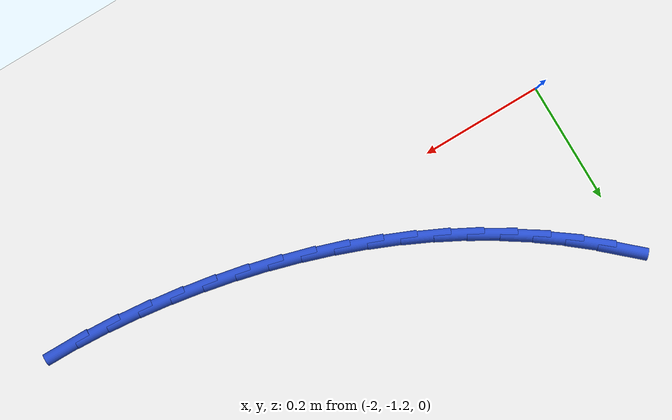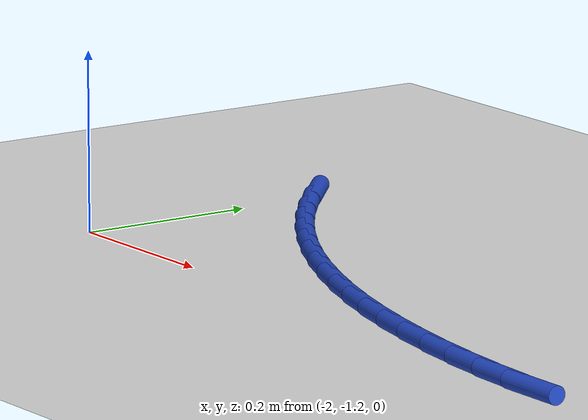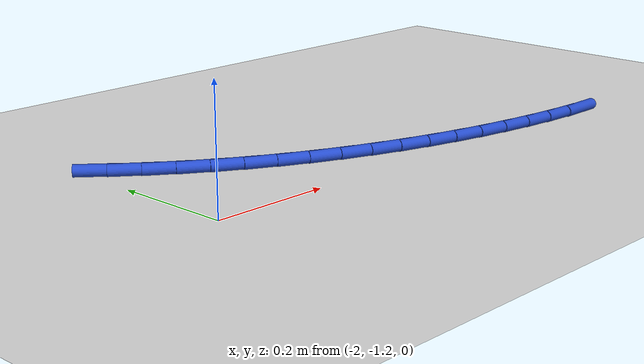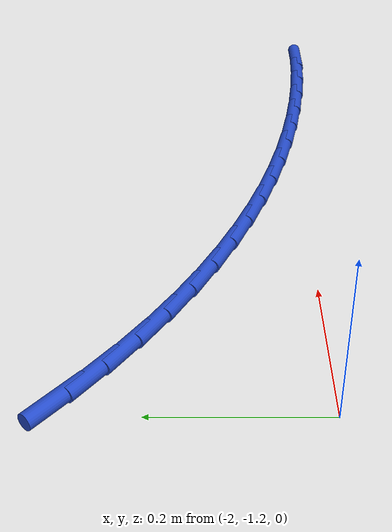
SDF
<sdf version="1.6">
 <world name="default">
  <model name="ground_plane">
   <static>1</static>
   <link name="link">
    <collision name="collision">
     <geometry><plane><normal>0 0 1</normal><size>100 100</size></plane></geometry>
     <surface><friction><ode><mu>100</mu><mu2>50</mu2></ode></friction></surface>
    </collision>
    <visual name="visual">
     <cast_shadows>0</cast_shadows>
     <geometry><plane><normal>0 0 1</normal><size>100 100</size></plane></geometry>
     <material>
      <script><uri>file://media/materials/scripts/gazebo.material</uri><name>Gazebo/WhiteGlow</name></script>
     </material>
    </visual>
   </link>
  </model>
  <model name="line">
   <link name="link_88">
    <pose>-1.986245755000648 -0.91223130965141 0.01 0 1.57 -0.7346722261584941</pose>
    <collision name="collision">
     <geometry><cylinder><radius>0.01</radius><length>0.08</length></cylinder></geometry>
    </collision>
    <visual name="visual">
     <material>
      <script><name>Gazebo/Blue</name><uri>file://media/materials/scripts/gazebo.material</uri></script>
     </material>
     <geometry><cylinder><radius>0.01</radius><length>0.08</length></cylinder></geometry>
    </visual>
   </link>
   <link name="link_89">
    <pose>-1.9478704218937657 -0.9468983202177496 0.01 0 1.57 -0.6820828998065551</pose>
    <collision name="collision">
     <geometry><cylinder><radius>0.01</radius><length>0.08</length></cylinder></geometry>
    </collision>
    <visual name="visual">
     <material>
      <script><name>Gazebo/Blue</name><uri>file://media/materials/scripts/gazebo.material</uri></script>
     </material>
     <geometry><cylinder><radius>0.01</radius><length>0.08</length></cylinder></geometry>
    </visual>
   </link>
   <link name="link_90">
    <pose>-1.90772173788481 -0.9795035550988094 0.01 0 1.57 -0.6306733466079936</pose>
    <collision name="collision">
     <geometry><cylinder><radius>0.01</radius><length>0.08</length></cylinder></geometry>
    </collision>
    <visual name="visual">
     <material>
      <script><name>Gazebo/Blue</name><uri>file://media/materials/scripts/gazebo.material</uri></script>
     </material>
     <geometry><cylinder><radius>0.01</radius><length>0.08</length></cylinder></geometry>
    </visual>
   </link>
   <link name="link_91">
    <pose>-1.8658793328129968 -1.0100546423540748 0.01 0 1.57 -0.5808918701263681</pose>
    <collision name="collision">
     <geometry><cylinder><radius>0.01</radius><length>0.08</length></cylinder></geometry>
    </collision>
    <visual name="visual">
     <material>
      <script><name>Gazebo/Blue</name><uri>file://media/materials/scripts/gazebo.material</uri></script>
     </material>
     <geometry><cylinder><radius>0.01</radius><length>0.08</length></cylinder></geometry>
    </visual>
   </link>
   <link name="link_92">
    <pose>-1.8224444654821819 -1.0385671958832785 0.01 0 1.57 -0.5327575339583152</pose>
    <collision name="collision">
     <geometry><cylinder><radius>0.01</radius><length>0.08</length></cylinder></geometry>
    </collision>
    <visual name="visual">
     <material>
      <script><name>Gazebo/Blue</name><uri>file://media/materials/scripts/gazebo.material</uri></script>
     </material>
     <geometry><cylinder><radius>0.01</radius><length>0.08</length></cylinder></geometry>
    </visual>
   </link>
   <link name="link_93">
    <pose>-1.7775183946962179 -1.065056829586155 0.01 0 1.57 -0.4862595987860679</pose>
    <collision name="collision">
     <geometry><cylinder><radius>0.01</radius><length>0.08</length></cylinder></geometry>
    </collision>
    <visual name="visual">
     <material>
      <script><name>Gazebo/Blue</name><uri>file://media/materials/scripts/gazebo.material</uri></script>
     </material>
     <geometry><cylinder><radius>0.01</radius><length>0.08</length></cylinder></geometry>
    </visual>
   </link>
   <link name="link_94">
    <pose>-1.7312023792589593 -1.0895391573624391 0.01 0 1.57 -0.4413621831955111</pose>
    <collision name="collision">
     <geometry><cylinder><radius>0.01</radius><length>0.08</length></cylinder></geometry>
    </collision>
    <visual name="visual">
     <material>
      <script><name>Gazebo/Blue</name><uri>file://media/materials/scripts/gazebo.material</uri></script>
     </material>
     <geometry><cylinder><radius>0.01</radius><length>0.08</length></cylinder></geometry>
    </visual>
   </link>
   <link name="link_95">
    <pose>-1.6835976779742592 -1.1120297931118648 0.01 0 1.57 -0.3980088379372035</pose>
    <collision name="collision">
     <geometry><cylinder><radius>0.01</radius><length>0.08</length></cylinder></geometry>
    </collision>
    <visual name="visual">
     <material>
      <script><name>Gazebo/Blue</name><uri>file://media/materials/scripts/gazebo.material</uri></script>
     </material>
     <geometry><cylinder><radius>0.01</radius><length>0.08</length></cylinder></geometry>
    </visual>
   </link>
   <link name="link_96">
    <pose>-1.6348055496459728 -1.1325443507341653 0.01 0 1.57 -0.35612679574997513</pose>
    <collision name="collision">
     <geometry><cylinder><radius>0.01</radius><length>0.08</length></cylinder></geometry>
    </collision>
    <visual name="visual">
     <material>
      <script><name>Gazebo/Blue</name><uri>file://media/materials/scripts/gazebo.material</uri></script>
     </material>
     <geometry><cylinder><radius>0.01</radius><length>0.08</length></cylinder></geometry>
    </visual>
   </link>
   <link name="link_97">
    <pose>-1.5849272530779532 -1.1510984441290755 0.01 0 1.57 -0.3156307503470803</pose>
    <collision name="collision">
     <geometry><cylinder><radius>0.01</radius><length>0.08</length></cylinder></geometry>
    </collision>
    <visual name="visual">
     <material>
      <script><name>Gazebo/Blue</name><uri>file://media/materials/scripts/gazebo.material</uri></script>
     </material>
     <geometry><cylinder><radius>0.01</radius><length>0.08</length></cylinder></geometry>
    </visual>
   </link>
   <link name="link_98">
    <pose>-1.5340640470740545 -1.1677076871963292 0.01 0 1.57 -0.2764260931148313</pose>
    <collision name="collision">
     <geometry><cylinder><radius>0.01</radius><length>0.08</length></cylinder></geometry>
    </collision>
    <visual name="visual">
     <material>
      <script><name>Gazebo/Blue</name><uri>file://media/materials/scripts/gazebo.material</uri></script>
     </material>
     <geometry><cylinder><radius>0.01</radius><length>0.08</length></cylinder></geometry>
    </visual>
   </link>
   <link name="link_99">
    <pose>-1.4823171904381311 -1.182387693835661 0.01 0 1.57 -0.23841159208166013</pose>
    <collision name="collision">
     <geometry><cylinder><radius>0.01</radius><length>0.08</length></cylinder></geometry>
    </collision>
    <visual name="visual">
     <material>
      <script><name>Gazebo/Blue</name><uri>file://media/materials/scripts/gazebo.material</uri></script>
     </material>
     <geometry><cylinder><radius>0.01</radius><length>0.08</length></cylinder></geometry>
    </visual>
   </link>
   <link name="link_100">
    <pose>-1.4297879419740351 -1.1951540779468044 0.01 0 1.57 -0.2014815358435118</pose>
    <collision name="collision">
     <geometry><cylinder><radius>0.01</radius><length>0.08</length></cylinder></geometry>
    </collision>
    <visual name="visual">
     <material>
      <script><name>Gazebo/Blue</name><uri>file://media/materials/scripts/gazebo.material</uri></script>
     </material>
     <geometry><cylinder><radius>0.01</radius><length>0.08</length></cylinder></geometry>
    </visual>
   </link>
   <link name="link_101">
    <pose>-1.3765775604856227 -1.2060224534294943 0.01 0 1.57 -0.16552738826390057</pose>
    <collision name="collision">
     <geometry><cylinder><radius>0.01</radius><length>0.08</length></cylinder></geometry>
    </collision>
    <visual name="visual">
     <material>
      <script><name>Gazebo/Blue</name><uri>file://media/materials/scripts/gazebo.material</uri></script>
     </material>
     <geometry><cylinder><radius>0.01</radius><length>0.08</length></cylinder></geometry>
    </visual>
   </link>
   <link name="link_102">
    <pose>-1.3227873047767469 -1.215008434183464 0.01 0 1.57 -0.1303063030385078</pose>
    <collision name="collision">
     <geometry><cylinder><radius>0.01</radius><length>0.08</length></cylinder></geometry>
    </collision>
    <visual name="visual">
     <material>
      <script><name>Gazebo/Blue</name><uri>file://media/materials/scripts/gazebo.material</uri></script>
     </material>
     <geometry><cylinder><radius>0.01</radius><length>0.08</length></cylinder></geometry>
    </visual>
   </link>
   <link name="link_103">
    <pose>-1.2685239433596973 -1.2221195863218242 0.01 0 1.57 -0.09350771259222046</pose>
    <collision name="collision">
     <geometry><cylinder><radius>0.01</radius><length>0.08</length></cylinder></geometry>
    </collision>
    <visual name="visual">
     <material>
      <script><name>Gazebo/Blue</name><uri>file://media/materials/scripts/gazebo.material</uri></script>
     </material>
     <geometry><cylinder><radius>0.01</radius><length>0.08</length></cylinder></geometry>
    </visual>
   </link>
   <link name="link_104">
    <pose>-1.2139825123721713 -1.227234547354034 0.01 0 1.57 -0.05299225513984192</pose>
    <collision name="collision">
     <geometry><cylinder><radius>0.01</radius><length>0.08</length></cylinder></geometry>
    </collision>
    <visual name="visual">
     <material>
      <script><name>Gazebo/Blue</name><uri>file://media/materials/scripts/gazebo.material</uri></script>
     </material>
     <geometry><cylinder><radius>0.01</radius><length>0.08</length></cylinder></geometry>
    </visual>
   </link>
   <link name="link_105">
    <pose>-1.1594291052632297 -1.2301281645279447 0.01 0 1.57 -0.0081802412389</pose>
    <collision name="collision">
     <geometry><cylinder><radius>0.01</radius><length>0.08</length></cylinder></geometry>
    </collision>
    <visual name="visual">
     <material>
      <script><name>Gazebo/Blue</name><uri>file://media/materials/scripts/gazebo.material</uri></script>
     </material>
     <geometry><cylinder><radius>0.01</radius><length>0.08</length></cylinder></geometry>
    </visual>
   </link>
  </model>
 </world>
</sdf>
